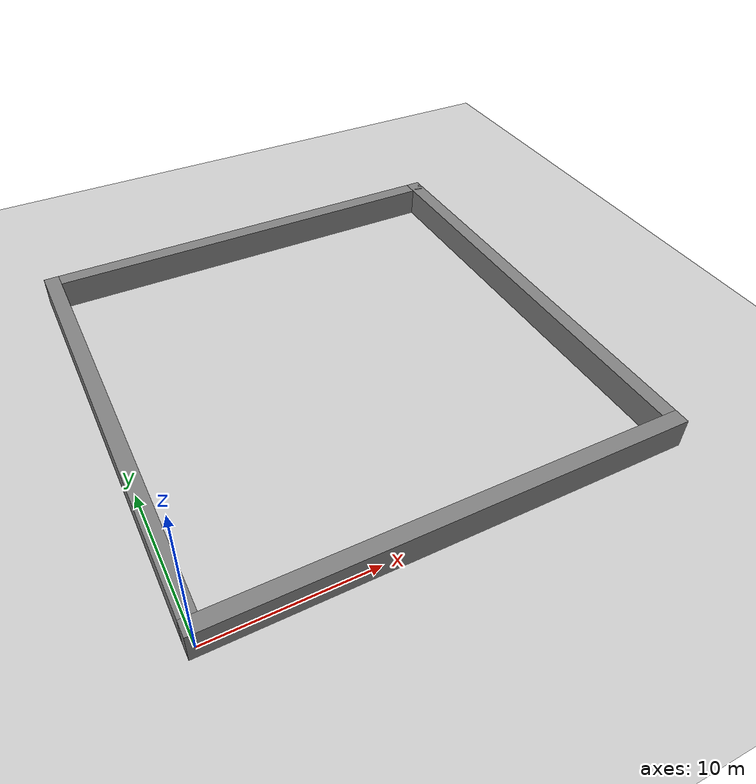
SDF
<?xml version="1.0" ?>
<sdf version="1.9">
  <world name="world_optimized">
    <physics type="ode">
      <max_step_size>0.001</max_step_size>
      <real_time_factor>1.0</real_time_factor>
      <real_time_update_rate>1000</real_time_update_rate>
    </physics>
    <plugin name='gz::sim::systems::Physics' filename='libgz-sim-physics-system.so'/>
    <plugin name='gz::sim::systems::UserCommands' filename='libgz-sim-user-commands-system.so'/>
    <plugin name='gz::sim::systems::SceneBroadcaster' filename='libgz-sim-scene-broadcaster-system.so'/>
    <plugin name='gz::sim::systems::Contact' filename='libgz-sim-contact-system.so'/>
    <plugin name='gz::sim::systems::Imu' filename='libgz-sim-imu-system.so'/>
    <plugin name='gz::sim::systems::AirPressure' filename='libgz-sim-air-pressure-system.so'/>
    <plugin name='gz::sim::systems::Sensors' filename='libgz-sim-sensors-system.so'>
      <render_engine>ogre2</render_engine>
    </plugin>
    <gravity>0 0 -9.80665</gravity>
    <magnetic_field>6e-06 2.3e-05 -4.2e-05</magnetic_field>
    <atmosphere type='adiabatic'/>
    <scene>
      <grid>false</grid>
      <ambient>0.4 0.4 0.4 1</ambient>
      <background>0.7 0.7 0.7 1</background>
      <shadows>true</shadows>
    </scene>
    <model name="ground_plane">
      <static>true</static>
      <link name="link">
        <collision name="collision">
          <geometry>
            <plane>
              <normal>0 0 1</normal>
              <size>100 100</size>
            </plane>
          </geometry>
        </collision>
        <visual name="visual">
          <geometry>
            <plane>
              <normal>0 0 1</normal>
              <size>100 100</size>
            </plane>
          </geometry>
          <material>
            <ambient>0.8 0.8 0.8 1</ambient>
            <diffuse>0.8 0.8 0.8 1</diffuse>
            <specular>0.8 0.8 0.8 1</specular>
          </material>
        </visual>
      </link>
    </model>
    <light type="directional" name="sun">
      <cast_shadows>true</cast_shadows>
      <pose>0 0 10 0 0 0</pose>
      <diffuse>0.8 0.8 0.8 1</diffuse>
      <specular>0.2 0.2 0.2 1</specular>
      <attenuation>
        <range>1000</range>
        <constant>0.9</constant>
        <linear>0.01</linear>
        <quadratic>0.001</quadratic>
      </attenuation>
      <direction>-0.5 0.1 -0.9</direction>
    </light>

    <model name="block_0_0">
      <static>true</static>
      <pose>14.5 0.0 1 0 0 0</pose>
      <link name="link">
        <collision name="collision">
          <geometry>
            <box>
              <size>30 1 2</size>
            </box>
          </geometry>
        </collision>
        <visual name="visual">
          <geometry>
            <box>
              <size>30 1 2</size>
            </box>
          </geometry>
          <material>
            <ambient>0.5 0.5 0.5 1</ambient>
            <diffuse>0.5 0.5 0.5 1</diffuse>
            <specular>0.5 0.5 0.5 1</specular>
          </material>
        </visual>
      </link>
    </model>

    <model name="block_1_0">
      <static>true</static>
      <pose>0.0 15.0 1 0 0 0</pose>
      <link name="link">
        <collision name="collision">
          <geometry>
            <box>
              <size>1 29 2</size>
            </box>
          </geometry>
        </collision>
        <visual name="visual">
          <geometry>
            <box>
              <size>1 29 2</size>
            </box>
          </geometry>
          <material>
            <ambient>0.5 0.5 0.5 1</ambient>
            <diffuse>0.5 0.5 0.5 1</diffuse>
            <specular>0.5 0.5 0.5 1</specular>
          </material>
        </visual>
      </link>
    </model>

    <model name="block_1_29">
      <static>true</static>
      <pose>29.0 15.0 1 0 0 0</pose>
      <link name="link">
        <collision name="collision">
          <geometry>
            <box>
              <size>1 29 2</size>
            </box>
          </geometry>
        </collision>
        <visual name="visual">
          <geometry>
            <box>
              <size>1 29 2</size>
            </box>
          </geometry>
          <material>
            <ambient>0.5 0.5 0.5 1</ambient>
            <diffuse>0.5 0.5 0.5 1</diffuse>
            <specular>0.5 0.5 0.5 1</specular>
          </material>
        </visual>
      </link>
    </model>

    <model name="block_29_1">
      <static>true</static>
      <pose>15.0 29.0 1 0 0 0</pose>
      <link name="link">
        <collision name="collision">
          <geometry>
            <box>
              <size>29 1 2</size>
            </box>
          </geometry>
        </collision>
        <visual name="visual">
          <geometry>
            <box>
              <size>29 1 2</size>
            </box>
          </geometry>
          <material>
            <ambient>0.5 0.5 0.5 1</ambient>
            <diffuse>0.5 0.5 0.5 1</diffuse>
            <specular>0.5 0.5 0.5 1</specular>
          </material>
        </visual>
      </link>
    </model>

  </world>
</sdf>
